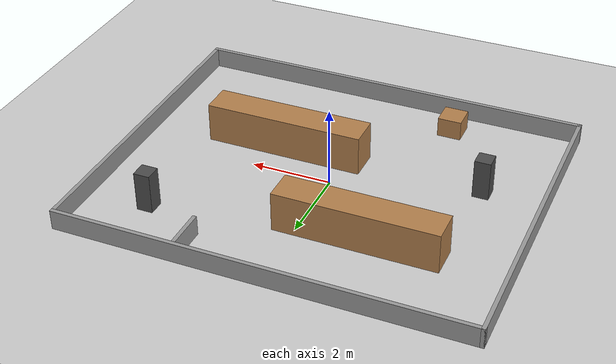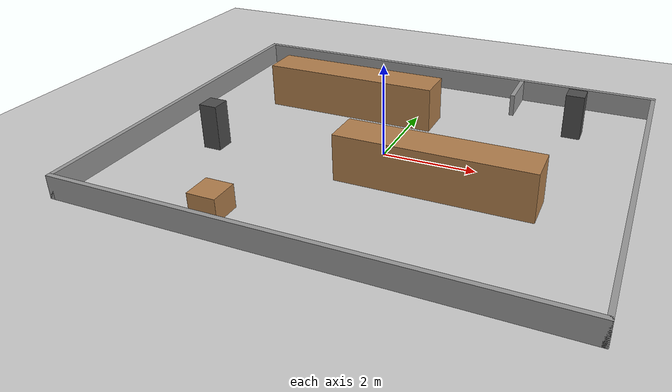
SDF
<?xml version="1.0"?>
<sdf version="1.6">
  <world name="default">

    <!-- 바닥과 해를 model:// 로 불러오지 않고 여기에 적는다. model:// 은 GAZEBO_MODEL_PATH 에 없으면 Gazebo 가
         온라인 모델 저장소에서 받으려 하고, 그동안 시작이 수십 초 ~ 몇 분 멈춘다 (simple_line.launch.py 참고) -->
    <model name="ground_plane">
      <static>true</static>
      <link name="link">
        <collision name="collision">
          <geometry><plane><normal>0 0 1</normal><size>100 100</size></plane></geometry>
          <surface><friction><ode><mu>100</mu><mu2>50</mu2></ode></friction></surface>
        </collision>
        <visual name="visual">
          <cast_shadows>false</cast_shadows>
          <geometry><plane><normal>0 0 1</normal><size>100 100</size></plane></geometry>
          <material>
            <script><uri>file://media/materials/scripts/gazebo.material</uri><name>Gazebo/Grey</name></script>
          </material>
        </visual>
      </link>
    </model>

    <light type="directional" name="sun">
      <cast_shadows>true</cast_shadows>
      <pose>0 0 10 0 0 0</pose>
      <diffuse>0.8 0.8 0.8 1</diffuse>
      <specular>0.2 0.2 0.2 1</specular>
      <attenuation><range>1000</range><constant>0.9</constant><linear>0.01</linear><quadratic>0.001</quadratic></attenuation>
      <direction>-0.5 0.1 -0.9</direction>
    </light>

    <scene>
      <shadows>false</shadows>
    </scene>

    <gui fullscreen='0'>
      <camera name='user_camera'>
        <pose frame=''>0 0 16 0 1.570796 0</pose>
        <view_controller>orbit</view_controller>
        <projection_type>perspective</projection_type>
      </camera>
    </gui>

    <physics type="ode">
      <real_time_update_rate>1000.0</real_time_update_rate>
      <max_step_size>0.001</max_step_size>
      <real_time_factor>1</real_time_factor>
    </physics>

    <model name="walls">
      <static>true</static>
      <link name="north">
        <pose>0 4.05 0.25 0 0 0</pose>
        <collision name="collision">
          <geometry><box><size>10.2 0.1 0.5</size></box></geometry>
        </collision>
        <visual name="visual">
          <geometry><box><size>10.2 0.1 0.5</size></box></geometry>
          <material>
            <script>
              <uri>file://media/materials/scripts/gazebo.material</uri>
              <name>Gazebo/Grey</name>
            </script>
          </material>
        </visual>
      </link>
      <link name="south">
        <pose>0 -4.05 0.25 0 0 0</pose>
        <collision name="collision">
          <geometry><box><size>10.2 0.1 0.5</size></box></geometry>
        </collision>
        <visual name="visual">
          <geometry><box><size>10.2 0.1 0.5</size></box></geometry>
          <material>
            <script>
              <uri>file://media/materials/scripts/gazebo.material</uri>
              <name>Gazebo/Grey</name>
            </script>
          </material>
        </visual>
      </link>
      <link name="east">
        <pose>5.05 0 0.25 0 0 0</pose>
        <collision name="collision">
          <geometry><box><size>0.1 8.2 0.5</size></box></geometry>
        </collision>
        <visual name="visual">
          <geometry><box><size>0.1 8.2 0.5</size></box></geometry>
          <material>
            <script>
              <uri>file://media/materials/scripts/gazebo.material</uri>
              <name>Gazebo/Grey</name>
            </script>
          </material>
        </visual>
      </link>
      <link name="west">
        <pose>-5.05 0 0.25 0 0 0</pose>
        <collision name="collision">
          <geometry><box><size>0.1 8.2 0.5</size></box></geometry>
        </collision>
        <visual name="visual">
          <geometry><box><size>0.1 8.2 0.5</size></box></geometry>
          <material>
            <script>
              <uri>file://media/materials/scripts/gazebo.material</uri>
              <name>Gazebo/Grey</name>
            </script>
          </material>
        </visual>
      </link>
    </model>

    <model name="warehouse_objects">
      <static>true</static>
      <link name="shelf_a">
        <pose>-1.5 1.8 0.5 0 0 0</pose>
        <collision name="collision">
          <geometry><box><size>4 0.8 1</size></box></geometry>
        </collision>
        <visual name="visual">
          <geometry><box><size>4 0.8 1</size></box></geometry>
          <material>
            <script>
              <uri>file://media/materials/scripts/gazebo.material</uri>
              <name>Gazebo/Wood</name>
            </script>
          </material>
        </visual>
      </link>
      <link name="shelf_b">
        <pose>1.5 -1.0 0.5 0 0 0</pose>
        <collision name="collision">
          <geometry><box><size>4 0.8 1</size></box></geometry>
        </collision>
        <visual name="visual">
          <geometry><box><size>4 0.8 1</size></box></geometry>
          <material>
            <script>
              <uri>file://media/materials/scripts/gazebo.material</uri>
              <name>Gazebo/Wood</name>
            </script>
          </material>
        </visual>
      </link>
      <link name="pillar_1">
        <pose>3.5 2.5 0.5 0 0 0</pose>
        <collision name="collision">
          <geometry><box><size>0.4 0.4 1</size></box></geometry>
        </collision>
        <visual name="visual">
          <geometry><box><size>0.4 0.4 1</size></box></geometry>
          <material>
            <script>
              <uri>file://media/materials/scripts/gazebo.material</uri>
              <name>Gazebo/DarkGrey</name>
            </script>
          </material>
        </visual>
      </link>
      <link name="pillar_2">
        <pose>-3.5 -1.0 0.5 0 0 0</pose>
        <collision name="collision">
          <geometry><box><size>0.4 0.4 1</size></box></geometry>
        </collision>
        <visual name="visual">
          <geometry><box><size>0.4 0.4 1</size></box></geometry>
          <material>
            <script>
              <uri>file://media/materials/scripts/gazebo.material</uri>
              <name>Gazebo/DarkGrey</name>
            </script>
          </material>
        </visual>
      </link>
      <link name="partition">
        <pose>2.0 3.5 0.25 0 0 0</pose>
        <collision name="collision">
          <geometry><box><size>0.1 1 0.5</size></box></geometry>
        </collision>
        <visual name="visual">
          <geometry><box><size>0.1 1 0.5</size></box></geometry>
          <material>
            <script>
              <uri>file://media/materials/scripts/gazebo.material</uri>
              <name>Gazebo/Grey</name>
            </script>
          </material>
        </visual>
      </link>
      <link name="crate">
        <pose>-2.0 -3.3 0.25 0 0 0</pose>
        <collision name="collision">
          <geometry><box><size>0.6 0.6 0.5</size></box></geometry>
        </collision>
        <visual name="visual">
          <geometry><box><size>0.6 0.6 0.5</size></box></geometry>
          <material>
            <script>
              <uri>file://media/materials/scripts/gazebo.material</uri>
              <name>Gazebo/Wood</name>
            </script>
          </material>
        </visual>
      </link>
    </model>

  </world>
</sdf>
